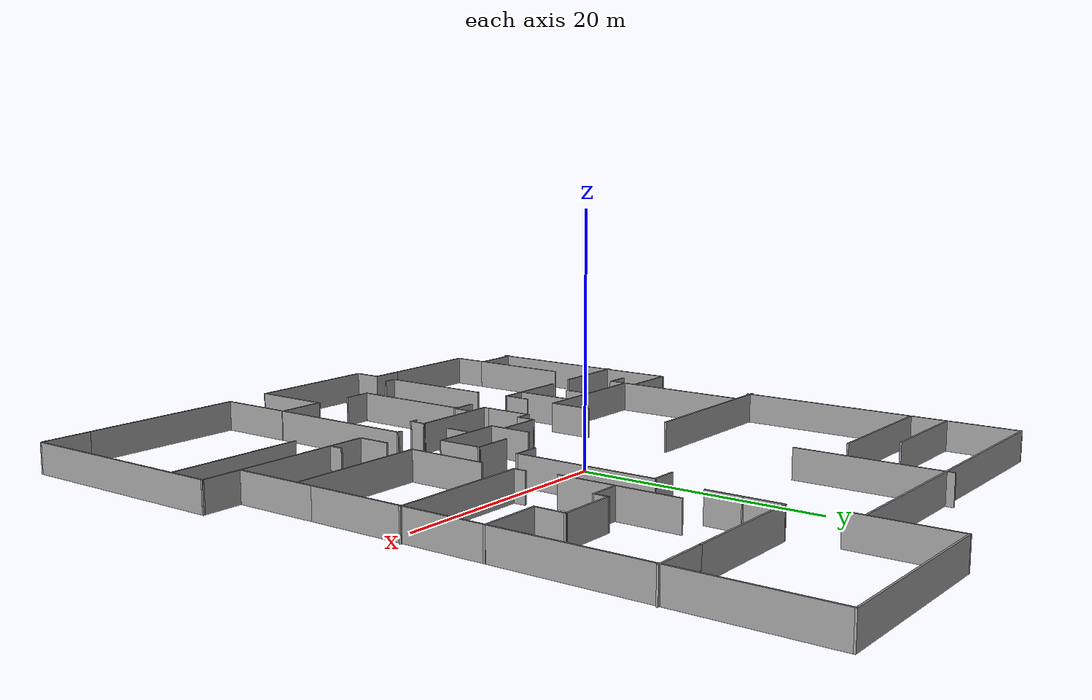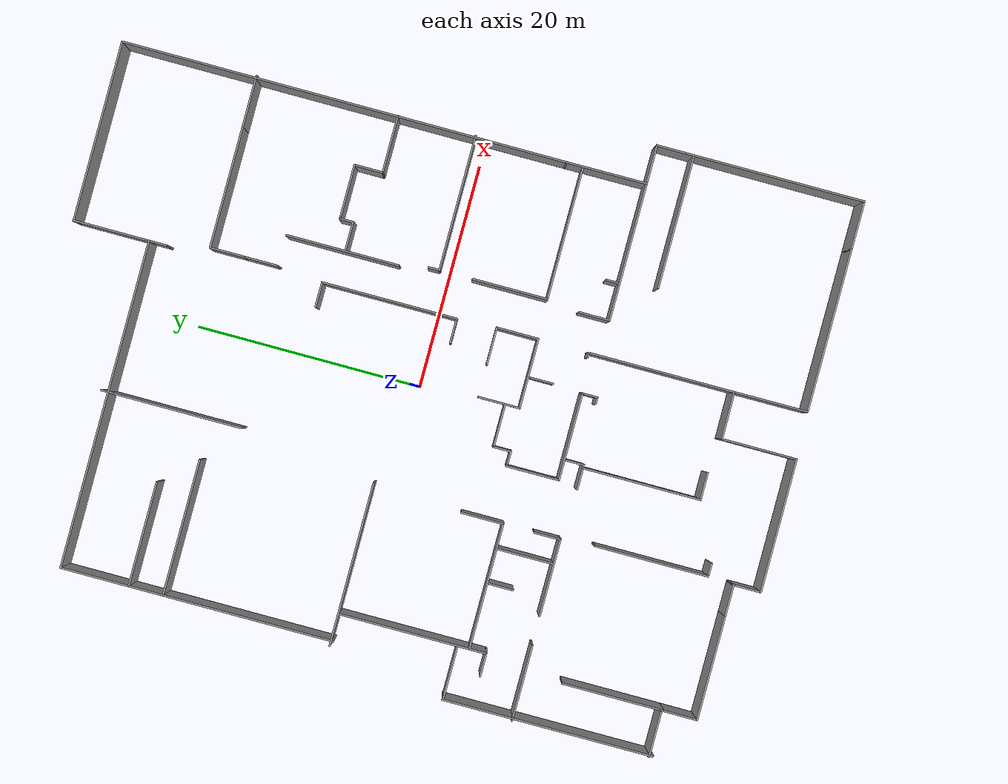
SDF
<?xml version='1.0'?>
<sdf version='1.7'>
  <model name='apartment'>
    <pose>-0.107701 -0.262945 0 0 -0 0</pose>
    <link name='Wall_0'>
      <collision name='Wall_0_Collision'>
        <geometry>
          <box>
            <size>29.0694 0.15 2.5</size>
          </box>
        </geometry>
        <pose>0 0 1.25 0 -0 0</pose>
      </collision>
      <visual name='Wall_0_Visual'>
        <pose>0 0 1.25 0 -0 0</pose>
        <geometry>
          <box>
            <size>29.0694 0.15 2.5</size>
          </box>
        </geometry>
        <material>
          <script>
            <uri>file://media/materials/scripts/gazebo.material</uri>
            <name>Gazebo/Grey</name>
          </script>
          <ambient>1 1 1 1</ambient>
        </material>
        <meta>
          <layer>0</layer>
        </meta>
      </visual>
      <pose>-8.31713 25.8035 0 0 -0 0</pose>
    </link>
    <link name='Wall_100'>
      <collision name='Wall_100_Collision'>
        <geometry>
          <box>
            <size>18.5 0.15 2.5</size>
          </box>
        </geometry>
        <pose>0 0 1.25 0 -0 0</pose>
      </collision>
      <visual name='Wall_100_Visual'>
        <pose>0 0 1.25 0 -0 0</pose>
        <geometry>
          <box>
            <size>18.5 0.15 2.5</size>
          </box>
        </geometry>
        <material>
          <script>
            <uri>file://media/materials/scripts/gazebo.material</uri>
            <name>Gazebo/Grey</name>
          </script>
          <ambient>1 1 1 1</ambient>
        </material>
        <meta>
          <layer>0</layer>
        </meta>
      </visual>
      <pose>25.3417 -23.1332 0 0 -0 1.5708</pose>
    </link>
    <link name='Wall_102'>
      <collision name='Wall_102_Collision'>
        <geometry>
          <box>
            <size>3.52854 0.15 2.5</size>
          </box>
        </geometry>
        <pose>0 0 1.25 0 -0 0</pose>
      </collision>
      <visual name='Wall_102_Visual'>
        <pose>0 0 1.25 0 -0 0</pose>
        <geometry>
          <box>
            <size>3.52854 0.15 2.5</size>
          </box>
        </geometry>
        <material>
          <script>
            <uri>file://media/materials/scripts/gazebo.material</uri>
            <name>Gazebo/Grey</name>
          </script>
          <ambient>1 1 1 1</ambient>
        </material>
        <meta>
          <layer>0</layer>
        </meta>
      </visual>
      <pose>23.6524 -13.9582 0 0 -0 3.14159</pose>
    </link>
    <link name='Wall_103'>
      <collision name='Wall_103_Collision'>
        <geometry>
          <box>
            <size>7.23385 0.15 2.5</size>
          </box>
        </geometry>
        <pose>0 0 1.25 0 -0 0</pose>
      </collision>
      <visual name='Wall_103_Visual'>
        <pose>0 0 1.25 0 -0 0</pose>
        <geometry>
          <box>
            <size>7.23385 0.15 2.5</size>
          </box>
        </geometry>
        <material>
          <script>
            <uri>file://media/materials/scripts/gazebo.material</uri>
            <name>Gazebo/Grey</name>
          </script>
          <ambient>1 1 1 1</ambient>
        </material>
        <meta>
          <layer>0</layer>
        </meta>
      </visual>
      <pose>21.9509 -10.4163 0 0 -0 1.57423</pose>
    </link>
    <link name='Wall_105'>
      <collision name='Wall_105_Collision'>
        <geometry>
          <box>
            <size>39.4784 0.15 2.5</size>
          </box>
        </geometry>
        <pose>0 0 1.25 0 -0 0</pose>
      </collision>
      <visual name='Wall_105_Visual'>
        <pose>0 0 1.25 0 -0 0</pose>
        <geometry>
          <box>
            <size>39.4784 0.15 2.5</size>
          </box>
        </geometry>
        <material>
          <script>
            <uri>file://media/materials/scripts/gazebo.material</uri>
            <name>Gazebo/Grey</name>
          </script>
          <ambient>1 1 1 1</ambient>
        </material>
        <meta>
          <layer>0</layer>
        </meta>
      </visual>
      <pose>21.9604 12.7897 0 0 -0 -1.57189</pose>
    </link>
    <link name='Wall_107'>
      <collision name='Wall_107_Collision'>
        <geometry>
          <box>
            <size>8.32 0.15 2.5</size>
          </box>
        </geometry>
        <pose>0 0 1.25 0 -0 0</pose>
      </collision>
      <visual name='Wall_107_Visual'>
        <pose>0 0 1.25 0 -0 0</pose>
        <geometry>
          <box>
            <size>8.32 0.15 2.5</size>
          </box>
        </geometry>
        <material>
          <script>
            <uri>file://media/materials/scripts/gazebo.material</uri>
            <name>Gazebo/Grey</name>
          </script>
          <ambient>1 1 1 1</ambient>
        </material>
        <meta>
          <layer>0</layer>
        </meta>
      </visual>
      <pose>6.14817 28.3929 0 0 -0 1.5708</pose>
    </link>
    <link name='Wall_108'>
      <collision name='Wall_108_Collision'>
        <geometry>
          <box>
            <size>15.9919 0.15 2.5</size>
          </box>
        </geometry>
        <pose>0 0 1.25 0 -0 0</pose>
      </collision>
      <visual name='Wall_108_Visual'>
        <pose>0 0 1.25 0 -0 0</pose>
        <geometry>
          <box>
            <size>15.9919 0.15 2.5</size>
          </box>
        </geometry>
        <material>
          <script>
            <uri>file://media/materials/scripts/gazebo.material</uri>
            <name>Gazebo/Grey</name>
          </script>
          <ambient>1 1 1 1</ambient>
        </material>
        <meta>
          <layer>0</layer>
        </meta>
      </visual>
      <pose>14.061 32.4619 0 0 -0 -0.001</pose>
    </link>
    <link name='Wall_11'>
      <collision name='Wall_11_Collision'>
        <geometry>
          <box>
            <size>18.75 0.15 2.5</size>
          </box>
        </geometry>
        <pose>0 0 1.25 0 -0 0</pose>
      </collision>
      <visual name='Wall_11_Visual'>
        <pose>0 0 1.25 0 -0 0</pose>
        <geometry>
          <box>
            <size>18.75 0.15 2.5</size>
          </box>
        </geometry>
        <material>
          <script>
            <uri>file://media/materials/scripts/gazebo.material</uri>
            <name>Gazebo/Grey</name>
          </script>
          <ambient>1 1 1 1</ambient>
        </material>
        <meta>
          <layer>0</layer>
        </meta>
      </visual>
      <pose>-25.1404 -17.9353 0 0 -0 -1.5708</pose>
    </link>
    <link name='Wall_110'>
      <collision name='Wall_110_Collision'>
        <geometry>
          <box>
            <size>12.5 0.15 2.5</size>
          </box>
        </geometry>
        <pose>0 0 1.25 0 -0 0</pose>
      </collision>
      <visual name='Wall_110_Visual'>
        <pose>0 0 1.25 0 -0 0</pose>
        <geometry>
          <box>
            <size>12.5 0.15 2.5</size>
          </box>
        </geometry>
        <material>
          <script>
            <uri>file://media/materials/scripts/gazebo.material</uri>
            <name>Gazebo/Grey</name>
          </script>
          <ambient>1 1 1 1</ambient>
        </material>
        <meta>
          <layer>0</layer>
        </meta>
      </visual>
      <pose>-7.22374 20.2354 0 0 -0 1.5708</pose>
    </link>
    <link name='Wall_112'>
      <collision name='Wall_112_Collision'>
        <geometry>
          <box>
            <size>9.25 0.15 2.5</size>
          </box>
        </geometry>
        <pose>0 0 1.25 0 -0 0</pose>
      </collision>
      <visual name='Wall_112_Visual'>
        <pose>0 0 1.25 0 -0 0</pose>
        <geometry>
          <box>
            <size>9.25 0.15 2.5</size>
          </box>
        </geometry>
        <material>
          <script>
            <uri>file://media/materials/scripts/gazebo.material</uri>
            <name>Gazebo/Grey</name>
          </script>
          <ambient>1 1 1 1</ambient>
        </material>
        <meta>
          <layer>0</layer>
        </meta>
      </visual>
      <pose>-18.1544 19.7842 0 0 -0 3.14159</pose>
    </link>
    <link name='Wall_114'>
      <collision name='Wall_114_Collision'>
        <geometry>
          <box>
            <size>12 0.15 2.5</size>
          </box>
        </geometry>
        <pose>0 0 1.25 0 -0 0</pose>
      </collision>
      <visual name='Wall_114_Visual'>
        <pose>0 0 1.25 0 -0 0</pose>
        <geometry>
          <box>
            <size>12 0.15 2.5</size>
          </box>
        </geometry>
        <material>
          <script>
            <uri>file://media/materials/scripts/gazebo.material</uri>
            <name>Gazebo/Grey</name>
          </script>
          <ambient>1 1 1 1</ambient>
        </material>
        <meta>
          <layer>0</layer>
        </meta>
      </visual>
      <pose>-16.7519 16.7441 0 0 -0 3.14159</pose>
    </link>
    <link name='Wall_116'>
      <collision name='Wall_116_Collision'>
        <geometry>
          <box>
            <size>14.5 0.15 2.5</size>
          </box>
        </geometry>
        <pose>0 0 1.25 0 -0 0</pose>
      </collision>
      <visual name='Wall_116_Visual'>
        <pose>0 0 1.25 0 -0 0</pose>
        <geometry>
          <box>
            <size>14.5 0.15 2.5</size>
          </box>
        </geometry>
        <material>
          <script>
            <uri>file://media/materials/scripts/gazebo.material</uri>
            <name>Gazebo/Grey</name>
          </script>
          <ambient>1 1 1 1</ambient>
        </material>
        <meta>
          <layer>0</layer>
        </meta>
      </visual>
      <pose>-16.0063 1.87873 0 0 -0 3.14159</pose>
    </link>
    <link name='Wall_118'>
      <collision name='Wall_118_Collision'>
        <geometry>
          <box>
            <size>2.15 0.15 2.5</size>
          </box>
        </geometry>
        <pose>0 0 1.25 0 -0 0</pose>
      </collision>
      <visual name='Wall_118_Visual'>
        <pose>0 0 1.25 0 -0 0</pose>
        <geometry>
          <box>
            <size>2.15 0.15 2.5</size>
          </box>
        </geometry>
        <material>
          <script>
            <uri>file://media/materials/scripts/gazebo.material</uri>
            <name>Gazebo/Grey</name>
          </script>
          <ambient>1 1 1 1</ambient>
        </material>
        <meta>
          <layer>0</layer>
        </meta>
      </visual>
      <pose>-21.3737 -11.2084 0 0 -0 0</pose>
    </link>
    <link name='Wall_120'>
      <collision name='Wall_120_Collision'>
        <geometry>
          <box>
            <size>3.82 0.15 2.5</size>
          </box>
        </geometry>
        <pose>0 0 1.25 0 -0 0</pose>
      </collision>
      <visual name='Wall_120_Visual'>
        <pose>0 0 1.25 0 -0 0</pose>
        <geometry>
          <box>
            <size>3.82 0.15 2.5</size>
          </box>
        </geometry>
        <material>
          <script>
            <uri>file://media/materials/scripts/gazebo.material</uri>
            <name>Gazebo/Grey</name>
          </script>
          <ambient>1 1 1 1</ambient>
        </material>
        <meta>
          <layer>0</layer>
        </meta>
      </visual>
      <pose>-9.30049 -7.88381 0 0 -0 -1.5708</pose>
    </link>
    <link name='Wall_122'>
      <collision name='Wall_122_Collision'>
        <geometry>
          <box>
            <size>11.05 0.15 2.5</size>
          </box>
        </geometry>
        <pose>0 0 1.25 0 -0 0</pose>
      </collision>
      <visual name='Wall_122_Visual'>
        <pose>0 0 1.25 0 -0 0</pose>
        <geometry>
          <box>
            <size>11.05 0.15 2.5</size>
          </box>
        </geometry>
        <material>
          <script>
            <uri>file://media/materials/scripts/gazebo.material</uri>
            <name>Gazebo/Grey</name>
          </script>
          <ambient>1 1 1 1</ambient>
        </material>
        <meta>
          <layer>0</layer>
        </meta>
      </visual>
      <pose>-14.8665 -9.71903 0 0 -0 0</pose>
    </link>
    <link name='Wall_124'>
      <collision name='Wall_124_Collision'>
        <geometry>
          <box>
            <size>2.3 0.15 2.5</size>
          </box>
        </geometry>
        <pose>0 0 1.25 0 -0 0</pose>
      </collision>
      <visual name='Wall_124_Visual'>
        <pose>0 0 1.25 0 -0 0</pose>
        <geometry>
          <box>
            <size>2.3 0.15 2.5</size>
          </box>
        </geometry>
        <material>
          <script>
            <uri>file://media/materials/scripts/gazebo.material</uri>
            <name>Gazebo/Grey</name>
          </script>
          <ambient>1 1 1 1</ambient>
        </material>
        <meta>
          <layer>0</layer>
        </meta>
      </visual>
      <pose>-14.5463 -10.9035 0 0 -0 1.5708</pose>
    </link>
    <link name='Wall_126'>
      <collision name='Wall_126_Collision'>
        <geometry>
          <box>
            <size>6.8895 0.15 2.5</size>
          </box>
        </geometry>
        <pose>0 0 1.25 0 -0 0</pose>
      </collision>
      <visual name='Wall_126_Visual'>
        <pose>0 0 1.25 0 -0 0</pose>
        <geometry>
          <box>
            <size>6.8895 0.15 2.5</size>
          </box>
        </geometry>
        <material>
          <script>
            <uri>file://media/materials/scripts/gazebo.material</uri>
            <name>Gazebo/Grey</name>
          </script>
          <ambient>1 1 1 1</ambient>
        </material>
        <meta>
          <layer>0</layer>
        </meta>
      </visual>
      <pose>-12.6895 -14.781 0 0 -0 -0.00156</pose>
    </link>
    <link name='Wall_13'>
      <collision name='Wall_13_Collision'>
        <geometry>
          <box>
            <size>4.272 0.15 2.5</size>
          </box>
        </geometry>
        <pose>0 0 1.25 0 -0 0</pose>
      </collision>
      <visual name='Wall_13_Visual'>
        <pose>0 0 1.25 0 -0 0</pose>
        <geometry>
          <box>
            <size>4.272 0.15 2.5</size>
          </box>
        </geometry>
        <material>
          <script>
            <uri>file://media/materials/scripts/gazebo.material</uri>
            <name>Gazebo/Grey</name>
          </script>
          <ambient>1 1 1 1</ambient>
        </material>
        <meta>
          <layer>0</layer>
        </meta>
      </visual>
      <pose>-23.1994 -26.9353 0 0 -0 3.14159</pose>
    </link>
    <link name='Wall_131'>
      <collision name='Wall_131_Collision'>
        <geometry>
          <box>
            <size>5 0.15 2.5</size>
          </box>
        </geometry>
        <pose>0 0 1.25 0 -0 0</pose>
      </collision>
      <visual name='Wall_131_Visual'>
        <pose>0 0 1.25 0 -0 0</pose>
        <geometry>
          <box>
            <size>5 0.15 2.5</size>
          </box>
        </geometry>
        <material>
          <script>
            <uri>file://media/materials/scripts/gazebo.material</uri>
            <name>Gazebo/Grey</name>
          </script>
          <ambient>1 1 1 1</ambient>
        </material>
        <meta>
          <layer>0</layer>
        </meta>
      </visual>
      <pose>-11.4883 -12.2221 0 0 -0 -1.5708</pose>
    </link>
    <link name='Wall_133'>
      <collision name='Wall_133_Collision'>
        <geometry>
          <box>
            <size>2.4 0.15 2.5</size>
          </box>
        </geometry>
        <pose>0 0 1.25 0 -0 0</pose>
      </collision>
      <visual name='Wall_133_Visual'>
        <pose>0 0 1.25 0 -0 0</pose>
        <geometry>
          <box>
            <size>2.4 0.15 2.5</size>
          </box>
        </geometry>
        <material>
          <script>
            <uri>file://media/materials/scripts/gazebo.material</uri>
            <name>Gazebo/Grey</name>
          </script>
          <ambient>1 1 1 1</ambient>
        </material>
        <meta>
          <layer>0</layer>
        </meta>
      </visual>
      <pose>-9.31971 -13.6613 0 0 -0 -1.5708</pose>
    </link>
    <link name='Wall_135'>
      <collision name='Wall_135_Collision'>
        <geometry>
          <box>
            <size>6.75 0.15 2.5</size>
          </box>
        </geometry>
        <pose>0 0 1.25 0 -0 0</pose>
      </collision>
      <visual name='Wall_135_Visual'>
        <pose>0 0 1.25 0 -0 0</pose>
        <geometry>
          <box>
            <size>6.75 0.15 2.5</size>
          </box>
        </geometry>
        <material>
          <script>
            <uri>file://media/materials/scripts/gazebo.material</uri>
            <name>Gazebo/Grey</name>
          </script>
          <ambient>1 1 1 1</ambient>
        </material>
        <meta>
          <layer>0</layer>
        </meta>
      </visual>
      <pose>-22.0418 -14.8329 0 0 -0 3.14159</pose>
    </link>
    <link name='Wall_137'>
      <collision name='Wall_137_Collision'>
        <geometry>
          <box>
            <size>9 0.15 2.5</size>
          </box>
        </geometry>
        <pose>0 0 1.25 0 -0 0</pose>
      </collision>
      <visual name='Wall_137_Visual'>
        <pose>0 0 1.25 0 -0 0</pose>
        <geometry>
          <box>
            <size>9 0.15 2.5</size>
          </box>
        </geometry>
        <material>
          <script>
            <uri>file://media/materials/scripts/gazebo.material</uri>
            <name>Gazebo/Grey</name>
          </script>
          <ambient>1 1 1 1</ambient>
        </material>
        <meta>
          <layer>0</layer>
        </meta>
      </visual>
      <pose>-21.1364 -22.6137 0 0 -0 -1.5708</pose>
    </link>
    <link name='Wall_139'>
      <collision name='Wall_139_Collision'>
        <geometry>
          <box>
            <size>10.1213 0.15 2.5</size>
          </box>
        </geometry>
        <pose>0 0 1.25 0 -0 0</pose>
      </collision>
      <visual name='Wall_139_Visual'>
        <pose>0 0 1.25 0 -0 0</pose>
        <geometry>
          <box>
            <size>10.1213 0.15 2.5</size>
          </box>
        </geometry>
        <material>
          <script>
            <uri>file://media/materials/scripts/gazebo.material</uri>
            <name>Gazebo/Grey</name>
          </script>
          <ambient>1 1 1 1</ambient>
        </material>
        <meta>
          <layer>0</layer>
        </meta>
      </visual>
      <pose>-9.06437 -22.8023 0 0 -0 -1.56972</pose>
    </link>
    <link name='Wall_140'>
      <collision name='Wall_140_Collision'>
        <geometry>
          <box>
            <size>1.25 0.15 2.5</size>
          </box>
        </geometry>
        <pose>0 0 1.25 0 -0 0</pose>
      </collision>
      <visual name='Wall_140_Visual'>
        <pose>0 0 1.25 0 -0 0</pose>
        <geometry>
          <box>
            <size>1.25 0.15 2.5</size>
          </box>
        </geometry>
        <material>
          <script>
            <uri>file://media/materials/scripts/gazebo.material</uri>
            <name>Gazebo/Grey</name>
          </script>
          <ambient>1 1 1 1</ambient>
        </material>
        <meta>
          <layer>0</layer>
        </meta>
      </visual>
      <pose>-8.509 -27.788 0 0 -0 0</pose>
    </link>
    <link name='Wall_142'>
      <collision name='Wall_142_Collision'>
        <geometry>
          <box>
            <size>2.5 0.15 2.5</size>
          </box>
        </geometry>
        <pose>0 0 1.25 0 -0 0</pose>
      </collision>
      <visual name='Wall_142_Visual'>
        <pose>0 0 1.25 0 -0 0</pose>
        <geometry>
          <box>
            <size>2.5 0.15 2.5</size>
          </box>
        </geometry>
        <material>
          <script>
            <uri>file://media/materials/scripts/gazebo.material</uri>
            <name>Gazebo/Grey</name>
          </script>
          <ambient>1 1 1 1</ambient>
        </material>
        <meta>
          <layer>0</layer>
        </meta>
      </visual>
      <pose>-1.7389 -25.4435 0 0 -0 3.14159</pose>
    </link>
    <link name='Wall_144'>
      <collision name='Wall_144_Collision'>
        <geometry>
          <box>
            <size>10.5 0.15 2.5</size>
          </box>
        </geometry>
        <pose>0 0 1.25 0 -0 0</pose>
      </collision>
      <visual name='Wall_144_Visual'>
        <pose>0 0 1.25 0 -0 0</pose>
        <geometry>
          <box>
            <size>10.5 0.15 2.5</size>
          </box>
        </geometry>
        <material>
          <script>
            <uri>file://media/materials/scripts/gazebo.material</uri>
            <name>Gazebo/Grey</name>
          </script>
          <ambient>1 1 1 1</ambient>
        </material>
        <meta>
          <layer>0</layer>
        </meta>
      </visual>
      <pose>-2.9139 -20.2685 0 0 -0 1.5708</pose>
    </link>
    <link name='Wall_146'>
      <collision name='Wall_146_Collision'>
        <geometry>
          <box>
            <size>2.28 0.15 2.5</size>
          </box>
        </geometry>
        <pose>0 0 1.25 0 -0 0</pose>
      </collision>
      <visual name='Wall_146_Visual'>
        <pose>0 0 1.25 0 -0 0</pose>
        <geometry>
          <box>
            <size>2.28 0.15 2.5</size>
          </box>
        </geometry>
        <material>
          <script>
            <uri>file://media/materials/scripts/gazebo.material</uri>
            <name>Gazebo/Grey</name>
          </script>
          <ambient>1 1 1 1</ambient>
        </material>
        <meta>
          <layer>0</layer>
        </meta>
      </visual>
      <pose>-3.70933 -15.0489 0 0 -0 0</pose>
    </link>
    <link name='Wall_148'>
      <collision name='Wall_148_Collision'>
        <geometry>
          <box>
            <size>1.75 0.15 2.5</size>
          </box>
        </geometry>
        <pose>0 0 1.25 0 -0 0</pose>
      </collision>
      <visual name='Wall_148_Visual'>
        <pose>0 0 1.25 0 -0 0</pose>
        <geometry>
          <box>
            <size>1.75 0.15 2.5</size>
          </box>
        </geometry>
        <material>
          <script>
            <uri>file://media/materials/scripts/gazebo.material</uri>
            <name>Gazebo/Grey</name>
          </script>
          <ambient>1 1 1 1</ambient>
        </material>
        <meta>
          <layer>0</layer>
        </meta>
      </visual>
      <pose>-2.64433 -14.2489 0 0 -0 -1.5708</pose>
    </link>
    <link name='Wall_15'>
      <collision name='Wall_15_Collision'>
        <geometry>
          <box>
            <size>3.29145 0.15 2.5</size>
          </box>
        </geometry>
        <pose>0 0 1.25 0 -0 0</pose>
      </collision>
      <visual name='Wall_15_Visual'>
        <pose>0 0 1.25 0 -0 0</pose>
        <geometry>
          <box>
            <size>3.29145 0.15 2.5</size>
          </box>
        </geometry>
        <material>
          <script>
            <uri>file://media/materials/scripts/gazebo.material</uri>
            <name>Gazebo/Grey</name>
          </script>
          <ambient>1 1 1 1</ambient>
        </material>
        <meta>
          <layer>0</layer>
        </meta>
      </visual>
      <pose>-21.1434 -28.5061 0 0 -0 -1.57398</pose>
    </link>
    <link name='Wall_150'>
      <collision name='Wall_150_Collision'>
        <geometry>
          <box>
            <size>7.81135 0.15 2.5</size>
          </box>
        </geometry>
        <pose>0 0 1.25 0 -0 0</pose>
      </collision>
      <visual name='Wall_150_Visual'>
        <pose>0 0 1.25 0 -0 0</pose>
        <geometry>
          <box>
            <size>7.81135 0.15 2.5</size>
          </box>
        </geometry>
        <material>
          <script>
            <uri>file://media/materials/scripts/gazebo.material</uri>
            <name>Gazebo/Grey</name>
          </script>
          <ambient>1 1 1 1</ambient>
        </material>
        <meta>
          <layer>0</layer>
        </meta>
      </visual>
      <pose>-0.607543 -13.3363 0 0 -0 0</pose>
    </link>
    <link name='Wall_153'>
      <collision name='Wall_153_Collision'>
        <geometry>
          <box>
            <size>1.45184 0.15 2.5</size>
          </box>
        </geometry>
        <pose>0 0 1.25 0 -0 0</pose>
      </collision>
      <visual name='Wall_153_Visual'>
        <pose>0 0 1.25 0 -0 0</pose>
        <geometry>
          <box>
            <size>1.45184 0.15 2.5</size>
          </box>
        </geometry>
        <material>
          <script>
            <uri>file://media/materials/scripts/gazebo.material</uri>
            <name>Gazebo/Grey</name>
          </script>
          <ambient>1 1 1 1</ambient>
        </material>
        <meta>
          <layer>0</layer>
        </meta>
      </visual>
      <pose>3.22134 -13.9872 0 0 -0 1.56804</pose>
    </link>
    <link name='Wall_155'>
      <collision name='Wall_155_Collision'>
        <geometry>
          <box>
            <size>0.7 0.15 2.5</size>
          </box>
        </geometry>
        <pose>0 0 1.25 0 -0 0</pose>
      </collision>
      <visual name='Wall_155_Visual'>
        <pose>0 0 1.25 0 -0 0</pose>
        <geometry>
          <box>
            <size>0.7 0.15 2.5</size>
          </box>
        </geometry>
        <material>
          <script>
            <uri>file://media/materials/scripts/gazebo.material</uri>
            <name>Gazebo/Grey</name>
          </script>
          <ambient>1 1 1 1</ambient>
        </material>
        <meta>
          <layer>0</layer>
        </meta>
      </visual>
      <pose>2.94667 -14.6682 0 0 -0 0</pose>
    </link>
    <link name='Wall_157'>
      <collision name='Wall_157_Collision'>
        <geometry>
          <box>
            <size>4.25 0.15 2.5</size>
          </box>
        </geometry>
        <pose>0 0 1.25 0 -0 0</pose>
      </collision>
      <visual name='Wall_157_Visual'>
        <pose>0 0 1.25 0 -0 0</pose>
        <geometry>
          <box>
            <size>4.25 0.15 2.5</size>
          </box>
        </geometry>
        <material>
          <script>
            <uri>file://media/materials/scripts/gazebo.material</uri>
            <name>Gazebo/Grey</name>
          </script>
          <ambient>1 1 1 1</ambient>
        </material>
        <meta>
          <layer>0</layer>
        </meta>
      </visual>
      <pose>-4.4505 -10.7855 0 0 -0 -1.5708</pose>
    </link>
    <link name='Wall_159'>
      <collision name='Wall_159_Collision'>
        <geometry>
          <box>
            <size>0.650922 0.15 2.5</size>
          </box>
        </geometry>
        <pose>0 0 1.25 0 -0 0</pose>
      </collision>
      <visual name='Wall_159_Visual'>
        <pose>0 0 1.25 0 -0 0</pose>
        <geometry>
          <box>
            <size>0.650922 0.15 2.5</size>
          </box>
        </geometry>
        <material>
          <script>
            <uri>file://media/materials/scripts/gazebo.material</uri>
            <name>Gazebo/Grey</name>
          </script>
          <ambient>1 1 1 1</ambient>
        </material>
        <meta>
          <layer>0</layer>
        </meta>
      </visual>
      <pose>-4.44436 -13.0859 0 0 -0 -1.54627</pose>
    </link>
    <link name='Wall_161'>
      <collision name='Wall_161_Collision'>
        <geometry>
          <box>
            <size>1.43469 0.15 2.5</size>
          </box>
        </geometry>
        <pose>0 0 1.25 0 -0 0</pose>
      </collision>
      <visual name='Wall_161_Visual'>
        <pose>0 0 1.25 0 -0 0</pose>
        <geometry>
          <box>
            <size>1.43469 0.15 2.5</size>
          </box>
        </geometry>
        <material>
          <script>
            <uri>file://media/materials/scripts/gazebo.material</uri>
            <name>Gazebo/Grey</name>
          </script>
          <ambient>1 1 1 1</ambient>
        </material>
        <meta>
          <layer>0</layer>
        </meta>
      </visual>
      <pose>-3.80816 -8.7355 0 0 -0 0</pose>
    </link>
    <link name='Wall_162'>
      <collision name='Wall_162_Collision'>
        <geometry>
          <box>
            <size>1.67536 0.15 2.5</size>
          </box>
        </geometry>
        <pose>0 0 1.25 0 -0 0</pose>
      </collision>
      <visual name='Wall_162_Visual'>
        <pose>0 0 1.25 0 -0 0</pose>
        <geometry>
          <box>
            <size>1.67536 0.15 2.5</size>
          </box>
        </geometry>
        <material>
          <script>
            <uri>file://media/materials/scripts/gazebo.material</uri>
            <name>Gazebo/Grey</name>
          </script>
          <ambient>1 1 1 1</ambient>
        </material>
        <meta>
          <layer>0</layer>
        </meta>
      </visual>
      <pose>-3.15648 -7.97282 0 0 -0 1.5708</pose>
    </link>
    <link name='Wall_164'>
      <collision name='Wall_164_Collision'>
        <geometry>
          <box>
            <size>3.8 0.15 2.5</size>
          </box>
        </geometry>
        <pose>0 0 1.25 0 -0 0</pose>
      </collision>
      <visual name='Wall_164_Visual'>
        <pose>0 0 1.25 0 -0 0</pose>
        <geometry>
          <box>
            <size>3.8 0.15 2.5</size>
          </box>
        </geometry>
        <material>
          <script>
            <uri>file://media/materials/scripts/gazebo.material</uri>
            <name>Gazebo/Grey</name>
          </script>
          <ambient>1 1 1 1</ambient>
        </material>
        <meta>
          <layer>0</layer>
        </meta>
      </visual>
      <pose>-1.33148 -7.21014 0 0 -0 0</pose>
    </link>
    <link name='Wall_166'>
      <collision name='Wall_166_Collision'>
        <geometry>
          <box>
            <size>3.76866 0.15 2.5</size>
          </box>
        </geometry>
        <pose>0 0 1.25 0 -0 0</pose>
      </collision>
      <visual name='Wall_166_Visual'>
        <pose>0 0 1.25 0 -0 0</pose>
        <geometry>
          <box>
            <size>3.76866 0.15 2.5</size>
          </box>
        </geometry>
        <material>
          <script>
            <uri>file://media/materials/scripts/gazebo.material</uri>
            <name>Gazebo/Grey</name>
          </script>
          <ambient>1 1 1 1</ambient>
        </material>
        <meta>
          <layer>0</layer>
        </meta>
      </visual>
      <pose>0.615863 -6.68208 0 0 -0 -1.5708</pose>
    </link>
    <link name='Wall_168'>
      <collision name='Wall_168_Collision'>
        <geometry>
          <box>
            <size>6.26866 0.15 2.5</size>
          </box>
        </geometry>
        <pose>0 0 1.25 0 -0 0</pose>
      </collision>
      <visual name='Wall_168_Visual'>
        <pose>0 0 1.25 0 -0 0</pose>
        <geometry>
          <box>
            <size>6.26866 0.15 2.5</size>
          </box>
        </geometry>
        <material>
          <script>
            <uri>file://media/materials/scripts/gazebo.material</uri>
            <name>Gazebo/Grey</name>
          </script>
          <ambient>1 1 1 1</ambient>
        </material>
        <meta>
          <layer>0</layer>
        </meta>
      </visual>
      <pose>3.67519 -8.49141 0 0 -0 0</pose>
    </link>
    <link name='Wall_17'>
      <collision name='Wall_17_Collision'>
        <geometry>
          <box>
            <size>9.26803 0.15 2.5</size>
          </box>
        </geometry>
        <pose>0 0 1.25 0 -0 0</pose>
      </collision>
      <visual name='Wall_17_Visual'>
        <pose>0 0 1.25 0 -0 0</pose>
        <geometry>
          <box>
            <size>9.26803 0.15 2.5</size>
          </box>
        </geometry>
        <material>
          <script>
            <uri>file://media/materials/scripts/gazebo.material</uri>
            <name>Gazebo/Grey</name>
          </script>
          <ambient>1 1 1 1</ambient>
        </material>
        <meta>
          <layer>0</layer>
        </meta>
      </visual>
      <pose>-16.5894 -30.0739 0 0 -0 0.000627</pose>
    </link>
    <link name='Wall_170'>
      <collision name='Wall_170_Collision'>
        <geometry>
          <box>
            <size>3.4 0.15 2.5</size>
          </box>
        </geometry>
        <pose>0 0 1.25 0 -0 0</pose>
      </collision>
      <visual name='Wall_170_Visual'>
        <pose>0 0 1.25 0 -0 0</pose>
        <geometry>
          <box>
            <size>3.4 0.15 2.5</size>
          </box>
        </geometry>
        <material>
          <script>
            <uri>file://media/materials/scripts/gazebo.material</uri>
            <name>Gazebo/Grey</name>
          </script>
          <ambient>1 1 1 1</ambient>
        </material>
        <meta>
          <layer>0</layer>
        </meta>
      </visual>
      <pose>5.12585 -4.81677 0 0 -0 0</pose>
    </link>
    <link name='Wall_172'>
      <collision name='Wall_172_Collision'>
        <geometry>
          <box>
            <size>3.82465 0.15 2.5</size>
          </box>
        </geometry>
        <pose>0 0 1.25 0 -0 0</pose>
      </collision>
      <visual name='Wall_172_Visual'>
        <pose>0 0 1.25 0 -0 0</pose>
        <geometry>
          <box>
            <size>3.82465 0.15 2.5</size>
          </box>
        </geometry>
        <material>
          <script>
            <uri>file://media/materials/scripts/gazebo.material</uri>
            <name>Gazebo/Grey</name>
          </script>
          <ambient>1 1 1 1</ambient>
        </material>
        <meta>
          <layer>0</layer>
        </meta>
      </visual>
      <pose>6.73802 -6.65409 0 0 -0 -1.5727</pose>
    </link>
    <link name='Wall_174'>
      <collision name='Wall_174_Collision'>
        <geometry>
          <box>
            <size>2.25 0.15 2.5</size>
          </box>
        </geometry>
        <pose>0 0 1.25 0 -0 0</pose>
      </collision>
      <visual name='Wall_174_Visual'>
        <pose>0 0 1.25 0 -0 0</pose>
        <geometry>
          <box>
            <size>2.25 0.15 2.5</size>
          </box>
        </geometry>
        <material>
          <script>
            <uri>file://media/materials/scripts/gazebo.material</uri>
            <name>Gazebo/Grey</name>
          </script>
          <ambient>1 1 1 1</ambient>
        </material>
        <meta>
          <layer>0</layer>
        </meta>
      </visual>
      <pose>3.36242 -9.66315 0 0 -0 1.5708</pose>
    </link>
    <link name='Wall_176'>
      <collision name='Wall_176_Collision'>
        <geometry>
          <box>
            <size>13 0.15 2.5</size>
          </box>
        </geometry>
        <pose>0 0 1.25 0 -0 0</pose>
      </collision>
      <visual name='Wall_176_Visual'>
        <pose>0 0 1.25 0 -0 0</pose>
        <geometry>
          <box>
            <size>13 0.15 2.5</size>
          </box>
        </geometry>
        <material>
          <script>
            <uri>file://media/materials/scripts/gazebo.material</uri>
            <name>Gazebo/Grey</name>
          </script>
          <ambient>1 1 1 1</ambient>
        </material>
        <meta>
          <layer>0</layer>
        </meta>
      </visual>
      <pose>6.71327 -19.4049 0 0 -0 1.5708</pose>
    </link>
    <link name='Wall_177'>
      <collision name='Wall_177_Collision'>
        <geometry>
          <box>
            <size>0.52 0.15 2.5</size>
          </box>
        </geometry>
        <pose>0 0 1.25 0 -0 0</pose>
      </collision>
      <visual name='Wall_177_Visual'>
        <pose>0 0 1.25 0 -0 0</pose>
        <geometry>
          <box>
            <size>0.52 0.15 2.5</size>
          </box>
        </geometry>
        <material>
          <script>
            <uri>file://media/materials/scripts/gazebo.material</uri>
            <name>Gazebo/Grey</name>
          </script>
          <ambient>1 1 1 1</ambient>
        </material>
        <meta>
          <layer>0</layer>
        </meta>
      </visual>
      <pose>6.52827 -12.9799 0 0 -0 3.14159</pose>
    </link>
    <link name='Wall_179'>
      <collision name='Wall_179_Collision'>
        <geometry>
          <box>
            <size>2.8 0.15 2.5</size>
          </box>
        </geometry>
        <pose>0 0 1.25 0 -0 0</pose>
      </collision>
      <visual name='Wall_179_Visual'>
        <pose>0 0 1.25 0 -0 0</pose>
        <geometry>
          <box>
            <size>2.8 0.15 2.5</size>
          </box>
        </geometry>
        <material>
          <script>
            <uri>file://media/materials/scripts/gazebo.material</uri>
            <name>Gazebo/Grey</name>
          </script>
          <ambient>1 1 1 1</ambient>
        </material>
        <meta>
          <layer>0</layer>
        </meta>
      </visual>
      <pose>9.84864 -12.6207 0 0 -0 -1.5708</pose>
    </link>
    <link name='Wall_180'>
      <collision name='Wall_180_Collision'>
        <geometry>
          <box>
            <size>12.2645 0.15 2.5</size>
          </box>
        </geometry>
        <pose>0 0 1.25 0 -0 0</pose>
      </collision>
      <visual name='Wall_180_Visual'>
        <pose>0 0 1.25 0 -0 0</pose>
        <geometry>
          <box>
            <size>12.2645 0.15 2.5</size>
          </box>
        </geometry>
        <material>
          <script>
            <uri>file://media/materials/scripts/gazebo.material</uri>
            <name>Gazebo/Grey</name>
          </script>
          <ambient>1 1 1 1</ambient>
        </material>
        <meta>
          <layer>0</layer>
        </meta>
      </visual>
      <pose>15.9059 -13.9519 0 0 -0 -0.001038</pose>
    </link>
    <link name='Wall_182'>
      <collision name='Wall_182_Collision'>
        <geometry>
          <box>
            <size>1.2 0.15 2.5</size>
          </box>
        </geometry>
        <pose>0 0 1.25 0 -0 0</pose>
      </collision>
      <visual name='Wall_182_Visual'>
        <pose>0 0 1.25 0 -0 0</pose>
        <geometry>
          <box>
            <size>1.2 0.15 2.5</size>
          </box>
        </geometry>
        <material>
          <script>
            <uri>file://media/materials/scripts/gazebo.material</uri>
            <name>Gazebo/Grey</name>
          </script>
          <ambient>1 1 1 1</ambient>
        </material>
        <meta>
          <layer>0</layer>
        </meta>
      </visual>
      <pose>13.1264 -13.3585 0 0 -0 -1.5708</pose>
    </link>
    <link name='Wall_184'>
      <collision name='Wall_184_Collision'>
        <geometry>
          <box>
            <size>11.75 0.15 2.5</size>
          </box>
        </geometry>
        <pose>0 0 1.25 0 -0 0</pose>
      </collision>
      <visual name='Wall_184_Visual'>
        <pose>0 0 1.25 0 -0 0</pose>
        <geometry>
          <box>
            <size>11.75 0.15 2.5</size>
          </box>
        </geometry>
        <material>
          <script>
            <uri>file://media/materials/scripts/gazebo.material</uri>
            <name>Gazebo/Grey</name>
          </script>
          <ambient>1 1 1 1</ambient>
        </material>
        <meta>
          <layer>0</layer>
        </meta>
      </visual>
      <pose>19.4218 -17.239 0 0 -0 0</pose>
    </link>
    <link name='Wall_186'>
      <collision name='Wall_186_Collision'>
        <geometry>
          <box>
            <size>6.75 0.15 2.5</size>
          </box>
        </geometry>
        <pose>0 0 1.25 0 -0 0</pose>
      </collision>
      <visual name='Wall_186_Visual'>
        <pose>0 0 1.25 0 -0 0</pose>
        <geometry>
          <box>
            <size>6.75 0.15 2.5</size>
          </box>
        </geometry>
        <material>
          <script>
            <uri>file://media/materials/scripts/gazebo.material</uri>
            <name>Gazebo/Grey</name>
          </script>
          <ambient>1 1 1 1</ambient>
        </material>
        <meta>
          <layer>0</layer>
        </meta>
      </visual>
      <pose>10.2178 -5.04852 0 0 -0 -1.5708</pose>
    </link>
    <link name='Wall_187'>
      <collision name='Wall_187_Collision'>
        <geometry>
          <box>
            <size>11.7617 0.15 2.5</size>
          </box>
        </geometry>
        <pose>0 0 1.25 0 -0 0</pose>
      </collision>
      <visual name='Wall_187_Visual'>
        <pose>0 0 1.25 0 -0 0</pose>
        <geometry>
          <box>
            <size>11.7617 0.15 2.5</size>
          </box>
        </geometry>
        <material>
          <script>
            <uri>file://media/materials/scripts/gazebo.material</uri>
            <name>Gazebo/Grey</name>
          </script>
          <ambient>1 1 1 1</ambient>
        </material>
        <meta>
          <layer>0</layer>
        </meta>
      </visual>
      <pose>16.0237 -8.34852 0 0 -0 0</pose>
    </link>
    <link name='Wall_189'>
      <collision name='Wall_189_Collision'>
        <geometry>
          <box>
            <size>2.28734 0.15 2.5</size>
          </box>
        </geometry>
        <pose>0 0 1.25 0 -0 0</pose>
      </collision>
      <visual name='Wall_189_Visual'>
        <pose>0 0 1.25 0 -0 0</pose>
        <geometry>
          <box>
            <size>2.28734 0.15 2.5</size>
          </box>
        </geometry>
        <material>
          <script>
            <uri>file://media/materials/scripts/gazebo.material</uri>
            <name>Gazebo/Grey</name>
          </script>
          <ambient>1 1 1 1</ambient>
        </material>
        <meta>
          <layer>0</layer>
        </meta>
      </visual>
      <pose>5.51431 10.6002 0 0 -0 -0.004365</pose>
    </link>
    <link name='Wall_19'>
      <collision name='Wall_19_Collision'>
        <geometry>
          <box>
            <size>3 0.15 2.5</size>
          </box>
        </geometry>
        <pose>0 0 1.25 0 -0 0</pose>
      </collision>
      <visual name='Wall_19_Visual'>
        <pose>0 0 1.25 0 -0 0</pose>
        <geometry>
          <box>
            <size>3 0.15 2.5</size>
          </box>
        </geometry>
        <material>
          <script>
            <uri>file://media/materials/scripts/gazebo.material</uri>
            <name>Gazebo/Grey</name>
          </script>
          <ambient>1 1 1 1</ambient>
        </material>
        <meta>
          <layer>0</layer>
        </meta>
      </visual>
      <pose>-10.6111 -30.0711 0 0 -0 0</pose>
    </link>
    <link name='Wall_190'>
      <collision name='Wall_190_Collision'>
        <geometry>
          <box>
            <size>12.056 0.15 2.5</size>
          </box>
        </geometry>
        <pose>0 0 1.25 0 -0 0</pose>
      </collision>
      <visual name='Wall_190_Visual'>
        <pose>0 0 1.25 0 -0 0</pose>
        <geometry>
          <box>
            <size>12.056 0.15 2.5</size>
          </box>
        </geometry>
        <material>
          <script>
            <uri>file://media/materials/scripts/gazebo.material</uri>
            <name>Gazebo/Grey</name>
          </script>
          <ambient>1 1 1 1</ambient>
        </material>
        <meta>
          <layer>0</layer>
        </meta>
      </visual>
      <pose>6.58297 4.64251 0 0 -0 -1.5708</pose>
    </link>
    <link name='Wall_191'>
      <collision name='Wall_191_Collision'>
        <geometry>
          <box>
            <size>2.28732 0.15 2.5</size>
          </box>
        </geometry>
        <pose>0 0 1.25 0 -0 0</pose>
      </collision>
      <visual name='Wall_191_Visual'>
        <pose>0 0 1.25 0 -0 0</pose>
        <geometry>
          <box>
            <size>2.28732 0.15 2.5</size>
          </box>
        </geometry>
        <material>
          <script>
            <uri>file://media/materials/scripts/gazebo.material</uri>
            <name>Gazebo/Grey</name>
          </script>
          <ambient>1 1 1 1</ambient>
        </material>
        <meta>
          <layer>0</layer>
        </meta>
      </visual>
      <pose>5.51431 -1.31048 0 0 -0 3.14159</pose>
    </link>
    <link name='Wall_193'>
      <collision name='Wall_193_Collision'>
        <geometry>
          <box>
            <size>3.16933 0.15 2.5</size>
          </box>
        </geometry>
        <pose>0 0 1.25 0 -0 0</pose>
      </collision>
      <visual name='Wall_193_Visual'>
        <pose>0 0 1.25 0 -0 0</pose>
        <geometry>
          <box>
            <size>3.16933 0.15 2.5</size>
          </box>
        </geometry>
        <material>
          <script>
            <uri>file://media/materials/scripts/gazebo.material</uri>
            <name>Gazebo/Grey</name>
          </script>
          <ambient>1 1 1 1</ambient>
        </material>
        <meta>
          <layer>0</layer>
        </meta>
      </visual>
      <pose>6.94877 19.1084 0 0 -0 1.57313</pose>
    </link>
    <link name='Wall_195'>
      <collision name='Wall_195_Collision'>
        <geometry>
          <box>
            <size>10.75 0.15 2.5</size>
          </box>
        </geometry>
        <pose>0 0 1.25 0 -0 0</pose>
      </collision>
      <visual name='Wall_195_Visual'>
        <pose>0 0 1.25 0 -0 0</pose>
        <geometry>
          <box>
            <size>10.75 0.15 2.5</size>
          </box>
        </geometry>
        <material>
          <script>
            <uri>file://media/materials/scripts/gazebo.material</uri>
            <name>Gazebo/Grey</name>
          </script>
          <ambient>1 1 1 1</ambient>
        </material>
        <meta>
          <layer>0</layer>
        </meta>
      </visual>
      <pose>12.2452 20.618 0 0 -0 0</pose>
    </link>
    <link name='Wall_197'>
      <collision name='Wall_197_Collision'>
        <geometry>
          <box>
            <size>4.75 0.15 2.5</size>
          </box>
        </geometry>
        <pose>0 0 1.25 0 -0 0</pose>
      </collision>
      <visual name='Wall_197_Visual'>
        <pose>0 0 1.25 0 -0 0</pose>
        <geometry>
          <box>
            <size>4.75 0.15 2.5</size>
          </box>
        </geometry>
        <material>
          <script>
            <uri>file://media/materials/scripts/gazebo.material</uri>
            <name>Gazebo/Grey</name>
          </script>
          <ambient>1 1 1 1</ambient>
        </material>
        <meta>
          <layer>0</layer>
        </meta>
      </visual>
      <pose>19.8452 20.618 0 0 -0 0</pose>
    </link>
    <link name='Wall_199'>
      <collision name='Wall_199_Collision'>
        <geometry>
          <box>
            <size>3 0.15 2.5</size>
          </box>
        </geometry>
        <pose>0 0 1.25 0 -0 0</pose>
      </collision>
      <visual name='Wall_199_Visual'>
        <pose>0 0 1.25 0 -0 0</pose>
        <geometry>
          <box>
            <size>3 0.15 2.5</size>
          </box>
        </geometry>
        <material>
          <script>
            <uri>file://media/materials/scripts/gazebo.material</uri>
            <name>Gazebo/Grey</name>
          </script>
          <ambient>1 1 1 1</ambient>
        </material>
        <meta>
          <layer>0</layer>
        </meta>
      </visual>
      <pose>6.9523 16.1737 0 0 -0 -1.5708</pose>
    </link>
    <link name='Wall_2'>
      <collision name='Wall_2_Collision'>
        <geometry>
          <box>
            <size>24.25 0.15 2.5</size>
          </box>
        </geometry>
        <pose>0 0 1.25 0 -0 0</pose>
      </collision>
      <visual name='Wall_2_Visual'>
        <pose>0 0 1.25 0 -0 0</pose>
        <geometry>
          <box>
            <size>24.25 0.15 2.5</size>
          </box>
        </geometry>
        <material>
          <script>
            <uri>file://media/materials/scripts/gazebo.material</uri>
            <name>Gazebo/Grey</name>
          </script>
          <ambient>1 1 1 1</ambient>
        </material>
        <meta>
          <layer>0</layer>
        </meta>
      </visual>
      <pose>-22.7768 13.7535 0 0 -0 -1.5708</pose>
    </link>
    <link name='Wall_201'>
      <collision name='Wall_201_Collision'>
        <geometry>
          <box>
            <size>10.05 0.15 2.5</size>
          </box>
        </geometry>
        <pose>0 0 1.25 0 -0 0</pose>
      </collision>
      <visual name='Wall_201_Visual'>
        <pose>0 0 1.25 0 -0 0</pose>
        <geometry>
          <box>
            <size>10.05 0.15 2.5</size>
          </box>
        </geometry>
        <material>
          <script>
            <uri>file://media/materials/scripts/gazebo.material</uri>
            <name>Gazebo/Grey</name>
          </script>
          <ambient>1 1 1 1</ambient>
        </material>
        <meta>
          <layer>0</layer>
        </meta>
      </visual>
      <pose>9.68424 9.64373 0 0 -0 -1.5708</pose>
    </link>
    <link name='Wall_203'>
      <collision name='Wall_203_Collision'>
        <geometry>
          <box>
            <size>2.68666 0.15 2.5</size>
          </box>
        </geometry>
        <pose>0 0 1.25 0 -0 0</pose>
      </collision>
      <visual name='Wall_203_Visual'>
        <pose>0 0 1.25 0 -0 0</pose>
        <geometry>
          <box>
            <size>2.68666 0.15 2.5</size>
          </box>
        </geometry>
        <material>
          <script>
            <uri>file://media/materials/scripts/gazebo.material</uri>
            <name>Gazebo/Grey</name>
          </script>
          <ambient>1 1 1 1</ambient>
        </material>
        <meta>
          <layer>0</layer>
        </meta>
      </visual>
      <pose>10.977 9.39245 0 0 -0 0</pose>
    </link>
    <link name='Wall_204'>
      <collision name='Wall_204_Collision'>
        <geometry>
          <box>
            <size>1.30679 0.15 2.5</size>
          </box>
        </geometry>
        <pose>0 0 1.25 0 -0 0</pose>
      </collision>
      <visual name='Wall_204_Visual'>
        <pose>0 0 1.25 0 -0 0</pose>
        <geometry>
          <box>
            <size>1.30679 0.15 2.5</size>
          </box>
        </geometry>
        <material>
          <script>
            <uri>file://media/materials/scripts/gazebo.material</uri>
            <name>Gazebo/Grey</name>
          </script>
          <ambient>1 1 1 1</ambient>
        </material>
        <meta>
          <layer>0</layer>
        </meta>
      </visual>
      <pose>12.2453 9.97085 0 0 -0 1.5708</pose>
    </link>
    <link name='Wall_205'>
      <collision name='Wall_205_Collision'>
        <geometry>
          <box>
            <size>4.91075 0.15 2.5</size>
          </box>
        </geometry>
        <pose>0 0 1.25 0 -0 0</pose>
      </collision>
      <visual name='Wall_205_Visual'>
        <pose>0 0 1.25 0 -0 0</pose>
        <geometry>
          <box>
            <size>4.91075 0.15 2.5</size>
          </box>
        </geometry>
        <material>
          <script>
            <uri>file://media/materials/scripts/gazebo.material</uri>
            <name>Gazebo/Grey</name>
          </script>
          <ambient>1 1 1 1</ambient>
        </material>
        <meta>
          <layer>0</layer>
        </meta>
      </visual>
      <pose>14.6257 10.5492 0 0 -0 0</pose>
    </link>
    <link name='Wall_206'>
      <collision name='Wall_206_Collision'>
        <geometry>
          <box>
            <size>2.63794 0.15 2.5</size>
          </box>
        </geometry>
        <pose>0 0 1.25 0 -0 0</pose>
      </collision>
      <visual name='Wall_206_Visual'>
        <pose>0 0 1.25 0 -0 0</pose>
        <geometry>
          <box>
            <size>2.63794 0.15 2.5</size>
          </box>
        </geometry>
        <material>
          <script>
            <uri>file://media/materials/scripts/gazebo.material</uri>
            <name>Gazebo/Grey</name>
          </script>
          <ambient>1 1 1 1</ambient>
        </material>
        <meta>
          <layer>0</layer>
        </meta>
      </visual>
      <pose>16.9939 9.30528 0 0 -0 -1.57406</pose>
    </link>
    <link name='Wall_207'>
      <collision name='Wall_207_Collision'>
        <geometry>
          <box>
            <size>5.15264 0.15 2.5</size>
          </box>
        </geometry>
        <pose>0 0 1.25 0 -0 0</pose>
      </collision>
      <visual name='Wall_207_Visual'>
        <pose>0 0 1.25 0 -0 0</pose>
        <geometry>
          <box>
            <size>5.15264 0.15 2.5</size>
          </box>
        </geometry>
        <material>
          <script>
            <uri>file://media/materials/scripts/gazebo.material</uri>
            <name>Gazebo/Grey</name>
          </script>
          <ambient>1 1 1 1</ambient>
        </material>
        <meta>
          <layer>0</layer>
        </meta>
      </visual>
      <pose>19.4912 8.06132 0 0 -0 0</pose>
    </link>
    <link name='Wall_209'>
      <collision name='Wall_209_Collision'>
        <geometry>
          <box>
            <size>12 0.15 2.5</size>
          </box>
        </geometry>
        <pose>0 0 1.25 0 -0 0</pose>
      </collision>
      <visual name='Wall_209_Visual'>
        <pose>0 0 1.25 0 -0 0</pose>
        <geometry>
          <box>
            <size>12 0.15 2.5</size>
          </box>
        </geometry>
        <material>
          <script>
            <uri>file://media/materials/scripts/gazebo.material</uri>
            <name>Gazebo/Grey</name>
          </script>
          <ambient>1 1 1 1</ambient>
        </material>
        <meta>
          <layer>0</layer>
        </meta>
      </visual>
      <pose>16.1384 1.20584 0 0 -0 0</pose>
    </link>
    <link name='Wall_21'>
      <collision name='Wall_21_Collision'>
        <geometry>
          <box>
            <size>2.5 0.15 2.5</size>
          </box>
        </geometry>
        <pose>0 0 1.25 0 -0 0</pose>
      </collision>
      <visual name='Wall_21_Visual'>
        <pose>0 0 1.25 0 -0 0</pose>
        <geometry>
          <box>
            <size>2.5 0.15 2.5</size>
          </box>
        </geometry>
        <material>
          <script>
            <uri>file://media/materials/scripts/gazebo.material</uri>
            <name>Gazebo/Grey</name>
          </script>
          <ambient>1 1 1 1</ambient>
        </material>
        <meta>
          <layer>0</layer>
        </meta>
      </visual>
      <pose>-9.18607 -31.2461 0 0 -0 -1.5708</pose>
    </link>
    <link name='Wall_211'>
      <collision name='Wall_211_Collision'>
        <geometry>
          <box>
            <size>1.09019 0.15 2.5</size>
          </box>
        </geometry>
        <pose>0 0 1.25 0 -0 0</pose>
      </collision>
      <visual name='Wall_211_Visual'>
        <pose>0 0 1.25 0 -0 0</pose>
        <geometry>
          <box>
            <size>1.09019 0.15 2.5</size>
          </box>
        </geometry>
        <material>
          <script>
            <uri>file://media/materials/scripts/gazebo.material</uri>
            <name>Gazebo/Grey</name>
          </script>
          <ambient>1 1 1 1</ambient>
        </material>
        <meta>
          <layer>0</layer>
        </meta>
      </visual>
      <pose>10.2057 1.67587 0 0 -0 -1.55441</pose>
    </link>
    <link name='Wall_25'>
      <collision name='Wall_25_Collision'>
        <geometry>
          <box>
            <size>11.9074 0.15 2.5</size>
          </box>
        </geometry>
        <pose>0 0 1.25 0 -0 0</pose>
      </collision>
      <visual name='Wall_25_Visual'>
        <pose>0 0 1.25 0 -0 0</pose>
        <geometry>
          <box>
            <size>11.9074 0.15 2.5</size>
          </box>
        </geometry>
        <material>
          <script>
            <uri>file://media/materials/scripts/gazebo.material</uri>
            <name>Gazebo/Grey</name>
          </script>
          <ambient>1 1 1 1</ambient>
        </material>
        <meta>
          <layer>0</layer>
        </meta>
      </visual>
      <pose>-3.31106 -32.4691 0 0 -0 0.001488</pose>
    </link>
    <link name='Wall_27'>
      <collision name='Wall_27_Collision'>
        <geometry>
          <box>
            <size>6.75 0.15 2.5</size>
          </box>
        </geometry>
        <pose>0 0 1.25 0 -0 0</pose>
      </collision>
      <visual name='Wall_27_Visual'>
        <pose>0 0 1.25 0 -0 0</pose>
        <geometry>
          <box>
            <size>6.75 0.15 2.5</size>
          </box>
        </geometry>
        <material>
          <script>
            <uri>file://media/materials/scripts/gazebo.material</uri>
            <name>Gazebo/Grey</name>
          </script>
          <ambient>1 1 1 1</ambient>
        </material>
        <meta>
          <layer>0</layer>
        </meta>
      </visual>
      <pose>2.56764 -29.1603 0 0 -0 -1.5708</pose>
    </link>
    <link name='Wall_29'>
      <collision name='Wall_29_Collision'>
        <geometry>
          <box>
            <size>4.29574 0.15 2.5</size>
          </box>
        </geometry>
        <pose>0 0 1.25 0 -0 0</pose>
      </collision>
      <visual name='Wall_29_Visual'>
        <pose>0 0 1.25 0 -0 0</pose>
        <geometry>
          <box>
            <size>4.29574 0.15 2.5</size>
          </box>
        </geometry>
        <material>
          <script>
            <uri>file://media/materials/scripts/gazebo.material</uri>
            <name>Gazebo/Grey</name>
          </script>
          <ambient>1 1 1 1</ambient>
        </material>
        <meta>
          <layer>0</layer>
        </meta>
      </visual>
      <pose>4.64046 -25.8451 0 0 -0 0.007337</pose>
    </link>
    <link name='Wall_33'>
      <collision name='Wall_33_Collision'>
        <geometry>
          <box>
            <size>6.61314 0.15 2.5</size>
          </box>
        </geometry>
        <pose>0 0 1.25 0 -0 0</pose>
      </collision>
      <visual name='Wall_33_Visual'>
        <pose>0 0 1.25 0 -0 0</pose>
        <geometry>
          <box>
            <size>6.61314 0.15 2.5</size>
          </box>
        </geometry>
        <material>
          <script>
            <uri>file://media/materials/scripts/gazebo.material</uri>
            <name>Gazebo/Grey</name>
          </script>
          <ambient>1 1 1 1</ambient>
        </material>
        <meta>
          <layer>0</layer>
        </meta>
      </visual>
      <pose>6.72087 -29.0615 0 0 -0 -1.56844</pose>
    </link>
    <link name='Wall_35'>
      <collision name='Wall_35_Collision'>
        <geometry>
          <box>
            <size>14.5 0.15 2.5</size>
          </box>
        </geometry>
        <pose>0 0 1.25 0 -0 0</pose>
      </collision>
      <visual name='Wall_35_Visual'>
        <pose>0 0 1.25 0 -0 0</pose>
        <geometry>
          <box>
            <size>14.5 0.15 2.5</size>
          </box>
        </geometry>
        <material>
          <script>
            <uri>file://media/materials/scripts/gazebo.material</uri>
            <name>Gazebo/Grey</name>
          </script>
          <ambient>1 1 1 1</ambient>
        </material>
        <meta>
          <layer>0</layer>
        </meta>
      </visual>
      <pose>13.9035 -32.3082 0 0 -0 0</pose>
    </link>
    <link name='Wall_5'>
      <collision name='Wall_5_Collision'>
        <geometry>
          <box>
            <size>13.2313 0.15 2.5</size>
          </box>
        </geometry>
        <pose>0 0 1.25 0 -0 0</pose>
      </collision>
      <visual name='Wall_5_Visual'>
        <pose>0 0 1.25 0 -0 0</pose>
        <geometry>
          <box>
            <size>13.2313 0.15 2.5</size>
          </box>
        </geometry>
        <material>
          <script>
            <uri>file://media/materials/scripts/gazebo.material</uri>
            <name>Gazebo/Grey</name>
          </script>
          <ambient>1 1 1 1</ambient>
        </material>
        <meta>
          <layer>0</layer>
        </meta>
      </visual>
      <pose>-20.38 -4.66777 0 0 -0 -1.56983</pose>
    </link>
    <link name='Wall_9'>
      <collision name='Wall_9_Collision'>
        <geometry>
          <box>
            <size>4.75 0.15 2.5</size>
          </box>
        </geometry>
        <pose>0 0 1.25 0 -0 0</pose>
      </collision>
      <visual name='Wall_9_Visual'>
        <pose>0 0 1.25 0 -0 0</pose>
        <geometry>
          <box>
            <size>4.75 0.15 2.5</size>
          </box>
        </geometry>
        <material>
          <script>
            <uri>file://media/materials/scripts/gazebo.material</uri>
            <name>Gazebo/Grey</name>
          </script>
          <ambient>1 1 1 1</ambient>
        </material>
        <meta>
          <layer>0</layer>
        </meta>
      </visual>
      <pose>-22.7804 -8.66534 0 0 -0 0</pose>
    </link>
    <link name='Wall_99'>
      <collision name='Wall_99_Collision'>
        <geometry>
          <box>
            <size>4.4134 0.15 2.5</size>
          </box>
        </geometry>
        <pose>0 0 1.25 0 -0 0</pose>
      </collision>
      <visual name='Wall_99_Visual'>
        <pose>0 0 1.25 0 -0 0</pose>
        <geometry>
          <box>
            <size>4.4134 0.15 2.5</size>
          </box>
        </geometry>
        <material>
          <script>
            <uri>file://media/materials/scripts/gazebo.material</uri>
            <name>Gazebo/Grey</name>
          </script>
          <ambient>1 1 1 1</ambient>
        </material>
        <meta>
          <layer>0</layer>
        </meta>
      </visual>
      <pose>23.2101 -32.3082 0 0 -0 0</pose>
    </link>
    <static>1</static>
  </model>
</sdf>
